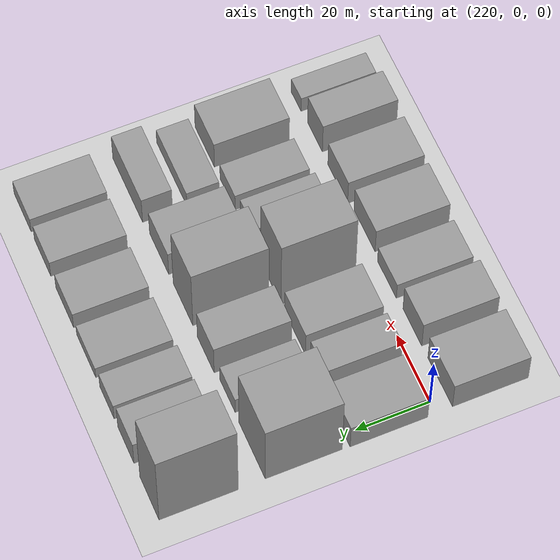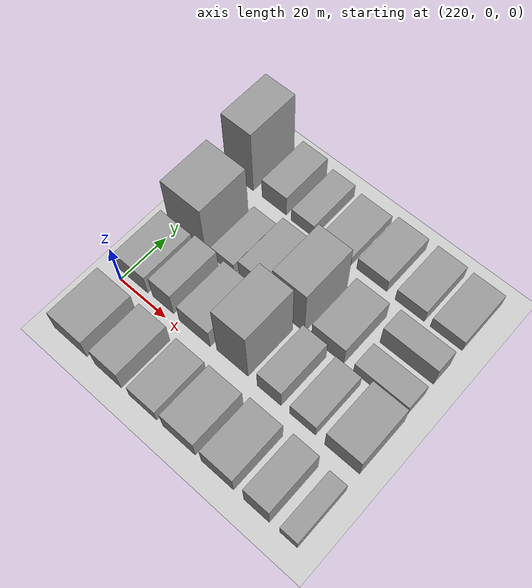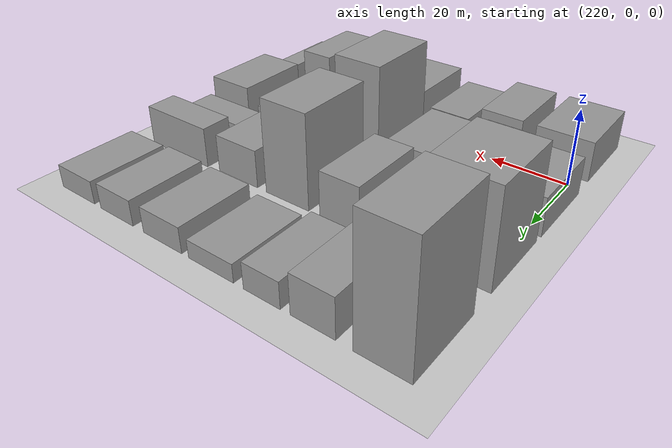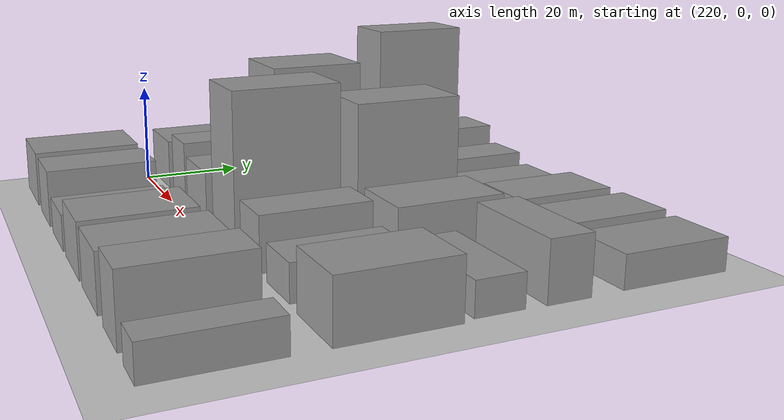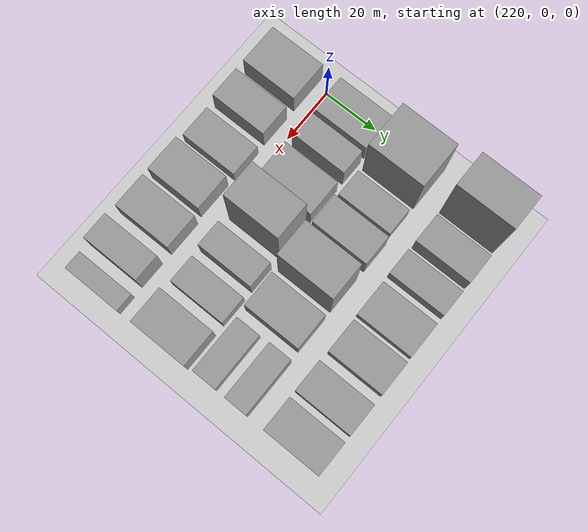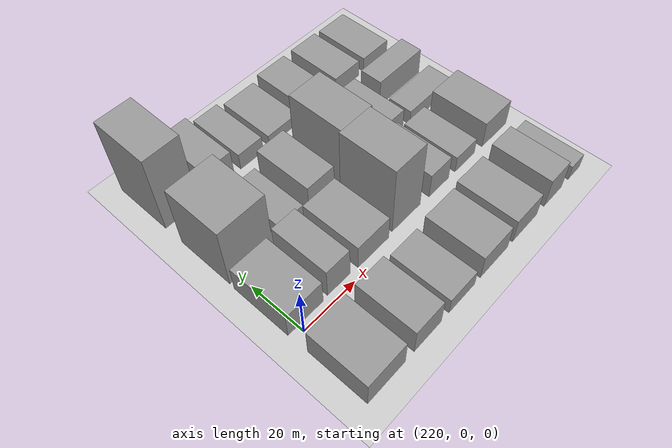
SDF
<sdf version="1.4">
 <world name="default">
  <model name="ground_plane">
   <static>1</static>
   <pose>100 65 0 0 -0 0</pose>
   <link name="link">
    <velocity_decay><linear>0</linear><angular>0</angular></velocity_decay>
    <collision name="collision">
     <geometry><plane><normal>0 0 1</normal><size>400 250</size></plane></geometry>
     <surface><friction><ode><mu>100</mu><mu2>50</mu2></ode></friction></surface>
    </collision>
    <visual name="visual">
     <geometry><plane><normal>0 0 1</normal><size>400 250</size></plane></geometry>
     <material>
      <script><name>Gazebo/Grey</name><uri>file://media/materials/scripts/gazebo.material</uri></script>
     </material>
    </visual>
   </link>
  </model>
  <model name="box_103">
   <static>1</static>
   <pose>224 -14.75 5 0 -0 0</pose>
   <link name="link">
    <velocity_decay><linear>0</linear><angular>0</angular></velocity_decay>
    <collision name="collision"><geometry><box><size>14.6 20.5 11</size></box></geometry></collision>
    <visual name="visual">
     <geometry><box><size>14.6 20.5 11</size></box></geometry>
     <material>
      <script><name>Gazebo/Grey</name><uri>file://media/materials/scripts/gazebo.material</uri></script>
     </material>
    </visual>
   </link>
  </model>
  <model name="box_203">
   <static>1</static>
   <pose>240.62 -14.75 5 0 -0 0</pose>
   <link name="link">
    <velocity_decay><linear>0</linear><angular>0</angular></velocity_decay>
    <collision name="collision"><geometry><box><size>11.4 20.5 11</size></box></geometry></collision>
    <visual name="visual">
     <geometry><box><size>11.4 20.5 11</size></box></geometry>
     <material>
      <script><name>Gazebo/Grey</name><uri>file://media/materials/scripts/gazebo.material</uri></script>
     </material>
    </visual>
   </link>
  </model>
  <model name="box_303">
   <static>1</static>
   <pose>255.46 -14.6 3 0 -0 0</pose>
   <link name="link">
    <velocity_decay><linear>0</linear><angular>0</angular></velocity_decay>
    <collision name="collision"><geometry><box><size>11.6 20.8 7</size></box></geometry></collision>
    <visual name="visual">
     <geometry><box><size>11.6 20.8 7</size></box></geometry>
     <material>
      <script><name>Gazebo/Grey</name><uri>file://media/materials/scripts/gazebo.material</uri></script>
     </material>
    </visual>
   </link>
  </model>
  <model name="box_403">
   <static>1</static>
   <pose>270.47 -14.85 5 0 -0 0</pose>
   <link name="link">
    <velocity_decay><linear>0</linear><angular>0</angular></velocity_decay>
    <collision name="collision"><geometry><box><size>13.2 20.3 10</size></box></geometry></collision>
    <visual name="visual">
     <geometry><box><size>13.2 20.3 10</size></box></geometry>
     <material>
      <script><name>Gazebo/Grey</name><uri>file://media/materials/scripts/gazebo.material</uri></script>
     </material>
    </visual>
   </link>
  </model>
  <model name="box_503">
   <static>1</static>
   <pose>285.78 -14.5 5 0 -0 0</pose>
   <link name="link">
    <velocity_decay><linear>0</linear><angular>0</angular></velocity_decay>
    <collision name="collision"><geometry><box><size>12.6 21 10</size></box></geometry></collision>
    <visual name="visual">
     <geometry><box><size>12.6 21 10</size></box></geometry>
     <material>
      <script><name>Gazebo/Grey</name><uri>file://media/materials/scripts/gazebo.material</uri></script>
     </material>
    </visual>
   </link>
  </model>
  <model name="box_603">
   <static>1</static>
   <pose>300.86 -14.6 6 0 -0 0</pose>
   <link name="link">
    <velocity_decay><linear>0</linear><angular>0</angular></velocity_decay>
    <collision name="collision"><geometry><box><size>9.6 20.8 12</size></box></geometry></collision>
    <visual name="visual">
     <geometry><box><size>9.6 20.8 12</size></box></geometry>
     <material>
      <script><name>Gazebo/Grey</name><uri>file://media/materials/scripts/gazebo.material</uri></script>
     </material>
    </visual>
   </link>
  </model>
  <model name="box_703">
   <static>1</static>
   <pose>312.725 -14.5 3 0 -0 0</pose>
   <link name="link">
    <velocity_decay><linear>0</linear><angular>0</angular></velocity_decay>
    <collision name="collision"><geometry><box><size>6.55005 21 6</size></box></geometry></collision>
    <visual name="visual">
     <geometry><box><size>6.55005 21 6</size></box></geometry>
     <material>
      <script><name>Gazebo/Grey</name><uri>file://media/materials/scripts/gazebo.material</uri></script>
     </material>
    </visual>
   </link>
  </model>
  <model name="box_113">
   <static>1</static>
   <pose>223.1 12.65 5 0 -0 0</pose>
   <link name="link">
    <velocity_decay><linear>0</linear><angular>0</angular></velocity_decay>
    <collision name="collision"><geometry><box><size>13.4 20.7 10</size></box></geometry></collision>
    <visual name="visual">
     <geometry><box><size>13.4 20.7 10</size></box></geometry>
     <material>
      <script><name>Gazebo/Grey</name><uri>file://media/materials/scripts/gazebo.material</uri></script>
     </material>
    </visual>
   </link>
  </model>
  <model name="box_213">
   <static>1</static>
   <pose>236.36 12.8 6 0 -0 0</pose>
   <link name="link">
    <velocity_decay><linear>0</linear><angular>0</angular></velocity_decay>
    <collision name="collision"><geometry><box><size>9.1 20.4 12</size></box></geometry></collision>
    <visual name="visual">
     <geometry><box><size>9.1 20.4 12</size></box></geometry>
     <material>
      <script><name>Gazebo/Grey</name><uri>file://media/materials/scripts/gazebo.material</uri></script>
     </material>
    </visual>
   </link>
  </model>
  <model name="box_313">
   <static>1</static>
   <pose>250.4 12.6 5 0 -0 0</pose>
   <link name="link">
    <velocity_decay><linear>0</linear><angular>0</angular></velocity_decay>
    <collision name="collision"><geometry><box><size>13.2 20.8 10</size></box></geometry></collision>
    <visual name="visual">
     <geometry><box><size>13.2 20.8 10</size></box></geometry>
     <material>
      <script><name>Gazebo/Grey</name><uri>file://media/materials/scripts/gazebo.material</uri></script>
     </material>
    </visual>
   </link>
  </model>
  <model name="box_413">
   <static>1</static>
   <pose>265.68 12.9 14 0 -0 0</pose>
   <link name="link">
    <velocity_decay><linear>0</linear><angular>0</angular></velocity_decay>
    <collision name="collision"><geometry><box><size>12.9 20.2 28</size></box></geometry></collision>
    <visual name="visual">
     <geometry><box><size>12.9 20.2 28</size></box></geometry>
     <material>
      <script><name>Gazebo/Grey</name><uri>file://media/materials/scripts/gazebo.material</uri></script>
     </material>
    </visual>
   </link>
  </model>
  <model name="box_513">
   <static>1</static>
   <pose>280.86 12.75 5 0 -0 0</pose>
   <link name="link">
    <velocity_decay><linear>0</linear><angular>0</angular></velocity_decay>
    <collision name="collision"><geometry><box><size>9.5 20.5 10</size></box></geometry></collision>
    <visual name="visual">
     <geometry><box><size>9.5 20.5 10</size></box></geometry>
     <material>
      <script><name>Gazebo/Grey</name><uri>file://media/materials/scripts/gazebo.material</uri></script>
     </material>
    </visual>
   </link>
  </model>
  <model name="box_613">
   <static>1</static>
   <pose>293.97 12.75 3 0 -0 0</pose>
   <link name="link">
    <velocity_decay><linear>0</linear><angular>0</angular></velocity_decay>
    <collision name="collision"><geometry><box><size>10 20.5 7</size></box></geometry></collision>
    <visual name="visual">
     <geometry><box><size>10 20.5 7</size></box></geometry>
     <material>
      <script><name>Gazebo/Grey</name><uri>file://media/materials/scripts/gazebo.material</uri></script>
     </material>
    </visual>
   </link>
  </model>
  <model name="box_713">
   <static>1</static>
   <pose>309.26 12.6 5 0 -0 0</pose>
   <link name="link">
    <velocity_decay><linear>0</linear><angular>0</angular></velocity_decay>
    <collision name="collision"><geometry><box><size>13.08 20.8 11</size></box></geometry></collision>
    <visual name="visual">
     <geometry><box><size>13.08 20.8 11</size></box></geometry>
     <material>
      <script><name>Gazebo/Grey</name><uri>file://media/materials/scripts/gazebo.material</uri></script>
     </material>
    </visual>
   </link>
  </model>
  <model name="box_123">
   <static>1</static>
   <pose>224.85 35.15 12 0 -0 0</pose>
   <link name="link">
    <velocity_decay><linear>0</linear><angular>0</angular></velocity_decay>
    <collision name="collision"><geometry><box><size>16.5 20.3 25</size></box></geometry></collision>
    <visual name="visual">
     <geometry><box><size>16.5 20.3 25</size></box></geometry>
     <material>
      <script><name>Gazebo/Grey</name><uri>file://media/materials/scripts/gazebo.material</uri></script>
     </material>
    </visual>
   </link>
  </model>
  <model name="box_223">
   <static>1</static>
   <pose>240.85 35.05 3 0 -0 0</pose>
   <link name="link">
    <velocity_decay><linear>0</linear><angular>0</angular></velocity_decay>
    <collision name="collision"><geometry><box><size>9.8 20.1 7</size></box></geometry></collision>
    <visual name="visual">
     <geometry><box><size>9.8 20.1 7</size></box></geometry>
     <material>
      <script><name>Gazebo/Grey</name><uri>file://media/materials/scripts/gazebo.material</uri></script>
     </material>
    </visual>
   </link>
  </model>
  <model name="box_323">
   <static>1</static>
   <pose>253.41 35.35 6 0 -0 0</pose>
   <link name="link">
    <velocity_decay><linear>0</linear><angular>0</angular></velocity_decay>
    <collision name="collision"><geometry><box><size>10.9 20.7 12</size></box></geometry></collision>
    <visual name="visual">
     <geometry><box><size>10.9 20.7 12</size></box></geometry>
     <material>
      <script><name>Gazebo/Grey</name><uri>file://media/materials/scripts/gazebo.material</uri></script>
     </material>
    </visual>
   </link>
  </model>
  <model name="box_423">
   <static>1</static>
   <pose>268.77 35.25 12 0 -0 0</pose>
   <link name="link">
    <velocity_decay><linear>0</linear><angular>0</angular></velocity_decay>
    <collision name="collision"><geometry><box><size>13 20.5 25</size></box></geometry></collision>
    <visual name="visual">
     <geometry><box><size>13 20.5 25</size></box></geometry>
     <material>
      <script><name>Gazebo/Grey</name><uri>file://media/materials/scripts/gazebo.material</uri></script>
     </material>
    </visual>
   </link>
  </model>
  <model name="box_523">
   <static>1</static>
   <pose>284.47 35.3 5 0 -0 0</pose>
   <link name="link">
    <velocity_decay><linear>0</linear><angular>0</angular></velocity_decay>
    <collision name="collision"><geometry><box><size>12.9 20.6 10</size></box></geometry></collision>
    <visual name="visual">
     <geometry><box><size>12.9 20.6 10</size></box></geometry>
     <material>
      <script><name>Gazebo/Grey</name><uri>file://media/materials/scripts/gazebo.material</uri></script>
     </material>
    </visual>
   </link>
  </model>
  <model name="box_623">
   <static>1</static>
   <pose>304.945 29.45 3 0 -0 0</pose>
   <link name="link">
    <velocity_decay><linear>0</linear><angular>0</angular></velocity_decay>
    <collision name="collision"><geometry><box><size>20.51 8.9 6</size></box></geometry></collision>
    <visual name="visual">
     <geometry><box><size>20.51 8.9 6</size></box></geometry>
     <material>
      <script><name>Gazebo/Grey</name><uri>file://media/materials/scripts/gazebo.material</uri></script>
     </material>
    </visual>
   </link>
  </model>
  <model name="box_6232">
   <static>1</static>
   <pose>304.945 41.9 5 0 -0 0</pose>
   <link name="link">
    <velocity_decay><linear>0</linear><angular>0</angular></velocity_decay>
    <collision name="collision"><geometry><box><size>20.51 8.2 11</size></box></geometry></collision>
    <visual name="visual">
     <geometry><box><size>20.51 8.2 11</size></box></geometry>
     <material>
      <script><name>Gazebo/Grey</name><uri>file://media/materials/scripts/gazebo.material</uri></script>
     </material>
    </visual>
   </link>
  </model>
  <model name="box_133">
   <static>1</static>
   <pose>222.7 62.7 15 0 -0 0</pose>
   <link name="link">
    <velocity_decay><linear>0</linear><angular>0</angular></velocity_decay>
    <collision name="collision"><geometry><box><size>12.4 20.6 31</size></box></geometry></collision>
    <visual name="visual">
     <geometry><box><size>12.4 20.6 31</size></box></geometry>
     <material>
      <script><name>Gazebo/Grey</name><uri>file://media/materials/scripts/gazebo.material</uri></script>
     </material>
    </visual>
   </link>
  </model>
  <model name="box_233">
   <static>1</static>
   <pose>238.07 62.8 5 0 -0 0</pose>
   <link name="link">
    <velocity_decay><linear>0</linear><angular>0</angular></velocity_decay>
    <collision name="collision"><geometry><box><size>10.7 20.4 10</size></box></geometry></collision>
    <visual name="visual">
     <geometry><box><size>10.7 20.4 10</size></box></geometry>
     <material>
      <script><name>Gazebo/Grey</name><uri>file://media/materials/scripts/gazebo.material</uri></script>
     </material>
    </visual>
   </link>
  </model>
  <model name="box_333">
   <static>1</static>
   <pose>250.67 62.65 3 0 -0 0</pose>
   <link name="link">
    <velocity_decay><linear>0</linear><angular>0</angular></velocity_decay>
    <collision name="collision"><geometry><box><size>9.6 20.7 7</size></box></geometry></collision>
    <visual name="visual">
     <geometry><box><size>9.6 20.7 7</size></box></geometry>
     <material>
      <script><name>Gazebo/Grey</name><uri>file://media/materials/scripts/gazebo.material</uri></script>
     </material>
    </visual>
   </link>
  </model>
  <model name="box_433">
   <static>1</static>
   <pose>264.66 62.7 2 0 -0 0</pose>
   <link name="link">
    <velocity_decay><linear>0</linear><angular>0</angular></velocity_decay>
    <collision name="collision"><geometry><box><size>13 20.6 5</size></box></geometry></collision>
    <visual name="visual">
     <geometry><box><size>13 20.6 5</size></box></geometry>
     <material>
      <script><name>Gazebo/Grey</name><uri>file://media/materials/scripts/gazebo.material</uri></script>
     </material>
    </visual>
   </link>
  </model>
  <model name="box_533">
   <static>1</static>
   <pose>279.41 62.85 3 0 -0 0</pose>
   <link name="link">
    <velocity_decay><linear>0</linear><angular>0</angular></velocity_decay>
    <collision name="collision"><geometry><box><size>12.3 20.3 7</size></box></geometry></collision>
    <visual name="visual">
     <geometry><box><size>12.3 20.3 7</size></box></geometry>
     <material>
      <script><name>Gazebo/Grey</name><uri>file://media/materials/scripts/gazebo.material</uri></script>
     </material>
    </visual>
   </link>
  </model>
  <model name="box_633">
   <static>1</static>
   <pose>294.89 62.65 3 0 -0 0</pose>
   <link name="link">
    <velocity_decay><linear>0</linear><angular>0</angular></velocity_decay>
    <collision name="collision"><geometry><box><size>11.5 20.7 7</size></box></geometry></collision>
    <visual name="visual">
     <geometry><box><size>11.5 20.7 7</size></box></geometry>
     <material>
      <script><name>Gazebo/Grey</name><uri>file://media/materials/scripts/gazebo.material</uri></script>
     </material>
    </visual>
   </link>
  </model>
  <model name="box_733">
   <static>1</static>
   <pose>309.09 62.6 3 0 -0 0</pose>
   <link name="link">
    <velocity_decay><linear>0</linear><angular>0</angular></velocity_decay>
    <collision name="collision"><geometry><box><size>12.22 20.8 6</size></box></geometry></collision>
    <visual name="visual">
     <geometry><box><size>12.22 20.8 6</size></box></geometry>
     <material>
      <script><name>Gazebo/Grey</name><uri>file://media/materials/scripts/gazebo.material</uri></script>
     </material>
    </visual>
   </link>
  </model>
 </world>
</sdf>
